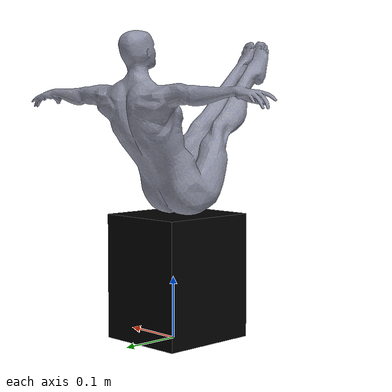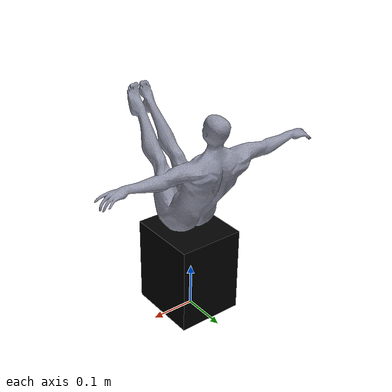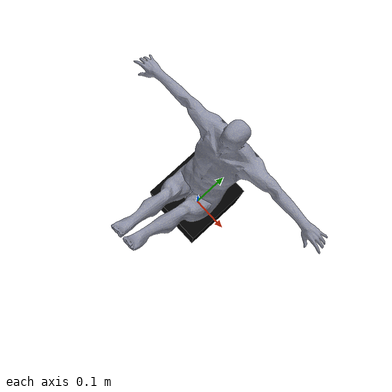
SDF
<?xml version='1.0'?>
<sdf version='1.6'>
  <model name='figurine_2'>
    <link name='link_2'>
       <visual name='visual'>
        <pose frame=''>0 0 0 0 -0 0</pose>
        <geometry>
          <mesh>
            <uri>model://figurine_2/meshes/model.dae</uri>
            <scale>1 1 1</scale>
          </mesh>
        </geometry>
           	 <material>
          <script>
            <uri>model://figurine_2/materials/scripts</uri>
            <uri>model://figurine_2/materials/textures</uri>
            <name>figure</name>
          </script>
        </material>
        <cast_shadows>1</cast_shadows>
        <transparency>0</transparency>
      </visual>
      <collision name='collision'>
        <laser_retro>0</laser_retro>
        <max_contacts>10</max_contacts>
        <pose frame=''>0 0 0 0 -0 0</pose>
        <geometry>
          <mesh>
            <uri>model://figurine_2/meshes/model.dae</uri>
            <scale>1 1 1</scale>
          </mesh>
        </geometry>
      </collision>
    </link>
    <static>1</static>
    <allow_auto_disable>1</allow_auto_disable>
  </model>
</sdf>
